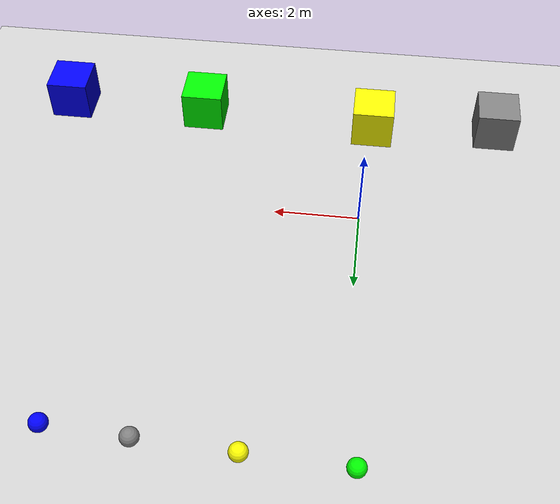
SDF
<sdf version="1.7">
 <world name="default">
  <model name="ground_plane">
   <static>1</static>
   <link name="link">
    <collision name="collision">
     <geometry><plane><normal>0 0 1</normal><size>100 100</size></plane></geometry>
     <surface>
      <contact><collide_bitmask>65535</collide_bitmask></contact>
      <friction><ode><mu>100</mu><mu2>50</mu2></ode></friction>
     </surface>
    </collision>
    <visual name="visual">
     <cast_shadows>0</cast_shadows>
     <geometry><plane><normal>0 0 1</normal><size>100 100</size></plane></geometry>
     <material>
      <script><uri>file://media/materials/scripts/gazebo.material</uri><name>Gazebo/Grey</name></script>
     </material>
    </visual>
   </link>
  </model>
  <light name="sun" type="directional">
   <pose>0 0 10 0 -0 0</pose>
   <diffuse>0.8 0.8 0.8 1</diffuse>
   <specular>0.2 0.2 0.2 1</specular>
   <attenuation>
    <range>1000</range>
    <constant>0.9</constant>
    <linear>0.01</linear>
    <quadratic>0.001</quadratic>
   </attenuation>
   <direction>-0.5 0.1 -0.9</direction>
   <spot><inner_angle>0</inner_angle><outer_angle>0</outer_angle><falloff>0</falloff></spot>
  </light>
  <model name="container_plastico">
   <pose>-0.152408 -3.0278 0.5 0 -0 0</pose>
   <link name="link">
    <visual name="visual">
     <geometry><box><size>1 1 1</size></box></geometry>
     <material><ambient>1 1 0 1</ambient><diffuse>1 1 0 1</diffuse><specular>0.1 0.1 0.1 1</specular></material>
    </visual>
    <collision name="collision"><geometry><box><size>1 1 1</size></box></geometry></collision>
    <inertial>
     <inertia><ixx>1</ixx><ixy>0</ixy><ixz>0</ixz><iyy>1</iyy><iyz>0</iyz><izz>1</izz></inertia>
     <mass>1</mass>
    </inertial>
   </link>
  </model>
  <model name="container_vidrio">
   <pose>4.16254 -3.18889 0.5 0 -0 0</pose>
   <link name="link">
    <visual name="visual">
     <geometry><box><size>1 1 1</size></box></geometry>
     <material><ambient>0 1 0 1</ambient><diffuse>0 1 0 1</diffuse><specular>0.1 0.1 0.1 1</specular></material>
    </visual>
    <collision name="collision"><geometry><box><size>1 1 1</size></box></geometry></collision>
    <inertial>
     <inertia><ixx>1</ixx><ixy>0</ixy><ixz>0</ixz><iyy>1</iyy><iyz>0</iyz><izz>1</izz></inertia>
     <mass>1</mass>
    </inertial>
   </link>
  </model>
  <model name="container_papel">
   <pose>7.64085 -3.24345 0.5 0 -0 0</pose>
   <link name="link">
    <visual name="visual">
     <geometry><box><size>1 1 1</size></box></geometry>
     <material><ambient>0 0 1 1</ambient><diffuse>0 0 1 1</diffuse><specular>0.1 0.1 0.1 1</specular></material>
    </visual>
    <collision name="collision"><geometry><box><size>1 1 1</size></box></geometry></collision>
    <inertial>
     <inertia><ixx>1</ixx><ixy>0</ixy><ixz>0</ixz><iyy>1</iyy><iyz>0</iyz><izz>1</izz></inertia>
     <mass>1</mass>
    </inertial>
   </link>
  </model>
  <model name="container_resto">
   <pose>-3.22232 -3.25396 0.5 0 -0 0</pose>
   <link name="link">
    <visual name="visual">
     <geometry><box><size>1 1 1</size></box></geometry>
     <material>
      <ambient>0.5 0.5 0.5 1</ambient>
      <diffuse>0.5 0.5 0.5 1</diffuse>
      <specular>0.1 0.1 0.1 1</specular>
     </material>
    </visual>
    <collision name="collision"><geometry><box><size>1 1 1</size></box></geometry></collision>
    <inertial>
     <inertia><ixx>1</ixx><ixy>0</ixy><ixz>0</ixz><iyy>1</iyy><iyz>0</iyz><izz>1</izz></inertia>
     <mass>1</mass>
    </inertial>
   </link>
  </model>
  <model name="elemento_plastico">
   <pose>1.91073 6.36116 0.2 0 -0 0</pose>
   <link name="link">
    <visual name="visual">
     <geometry><sphere><radius>0.2</radius></sphere></geometry>
     <material><ambient>1 1 0 1</ambient><diffuse>1 1 0 1</diffuse><specular>0.1 0.1 0.1 1</specular></material>
    </visual>
    <collision name="collision"><geometry><sphere><radius>0.2</radius></sphere></geometry></collision>
    <inertial>
     <inertia><ixx>1</ixx><ixy>0</ixy><ixz>0</ixz><iyy>1</iyy><iyz>0</iyz><izz>1</izz></inertia>
     <mass>1</mass>
    </inertial>
   </link>
  </model>
  <model name="elemento_vidrio">
   <pose>-0.338659 6.42545 0.2 0 -0 0</pose>
   <link name="link">
    <visual name="visual">
     <geometry><sphere><radius>0.2</radius></sphere></geometry>
     <material><ambient>0 1 0 1</ambient><diffuse>0 1 0 1</diffuse><specular>0.1 0.1 0.1 1</specular></material>
    </visual>
    <collision name="collision"><geometry><sphere><radius>0.2</radius></sphere></geometry></collision>
    <inertial>
     <inertia><ixx>1</ixx><ixy>0</ixy><ixz>0</ixz><iyy>1</iyy><iyz>0</iyz><izz>1</izz></inertia>
     <mass>1</mass>
    </inertial>
   </link>
  </model>
  <model name="elemento_papel">
   <pose>5.84804 6.19024 0.2 0 -0 0</pose>
   <link name="link">
    <visual name="visual">
     <geometry><sphere><radius>0.2</radius></sphere></geometry>
     <material><ambient>0 0 1 1</ambient><diffuse>0 0 1 1</diffuse><specular>0.1 0.1 0.1 1</specular></material>
    </visual>
    <collision name="collision"><geometry><sphere><radius>0.2</radius></sphere></geometry></collision>
    <inertial>
     <inertia><ixx>1</ixx><ixy>0</ixy><ixz>0</ixz><iyy>1</iyy><iyz>0</iyz><izz>1</izz></inertia>
     <mass>1</mass>
    </inertial>
   </link>
  </model>
  <model name="elemento_resto">
   <pose>4.03049 6.28397 0.2 0 -0 0</pose>
   <link name="link">
    <visual name="visual">
     <geometry><sphere><radius>0.2</radius></sphere></geometry>
     <material>
      <ambient>0.5 0.5 0.5 1</ambient>
      <diffuse>0.5 0.5 0.5 1</diffuse>
      <specular>0.1 0.1 0.1 1</specular>
     </material>
    </visual>
    <collision name="collision"><geometry><sphere><radius>0.2</radius></sphere></geometry></collision>
    <inertial>
     <inertia><ixx>1</ixx><ixy>0</ixy><ixz>0</ixz><iyy>1</iyy><iyz>0</iyz><izz>1</izz></inertia>
     <mass>1</mass>
    </inertial>
   </link>
  </model>
  <gravity>0 0 -9.8</gravity>
  <magnetic_field>6e-06 2.3e-05 -4.2e-05</magnetic_field>
  <atmosphere type="adiabatic"/>
  <physics type="ode">
   <max_step_size>0.001</max_step_size>
   <real_time_factor>1</real_time_factor>
   <real_time_update_rate>1000</real_time_update_rate>
  </physics>
  <scene><ambient>0.4 0.4 0.4 1</ambient><background>0.7 0.7 0.7 1</background><shadows>1</shadows></scene>
  <spherical_coordinates>
   <surface_model>EARTH_WGS84</surface_model>
   <latitude_deg>0</latitude_deg>
   <longitude_deg>0</longitude_deg>
   <elevation>0</elevation>
   <heading_deg>0</heading_deg>
  </spherical_coordinates>
 </world>
</sdf>
